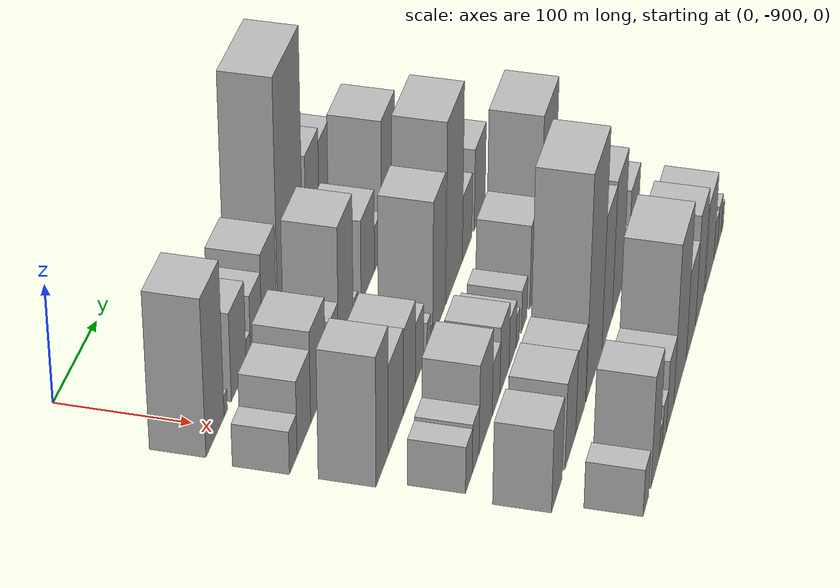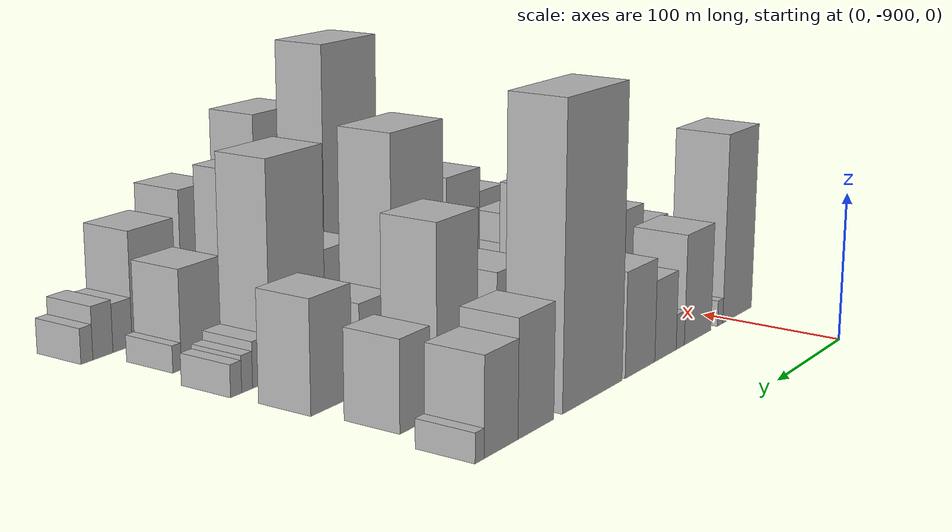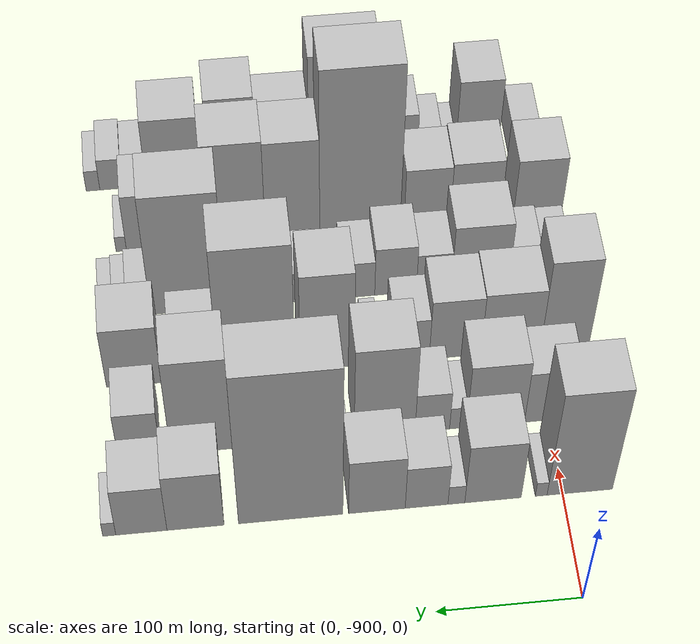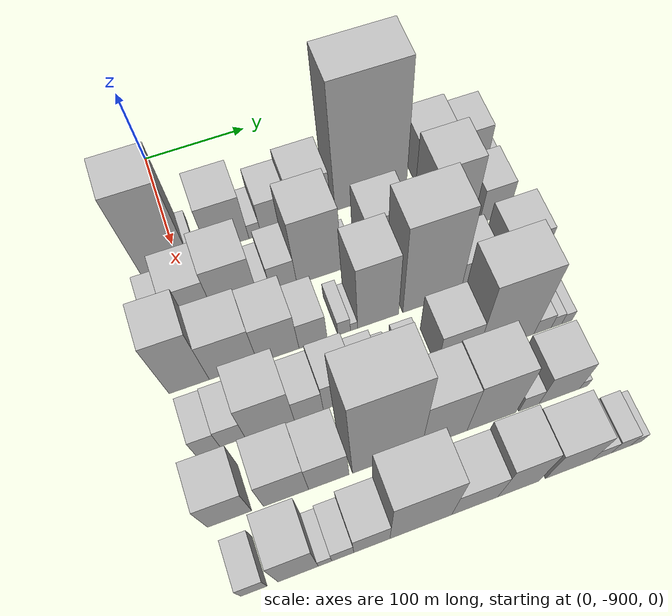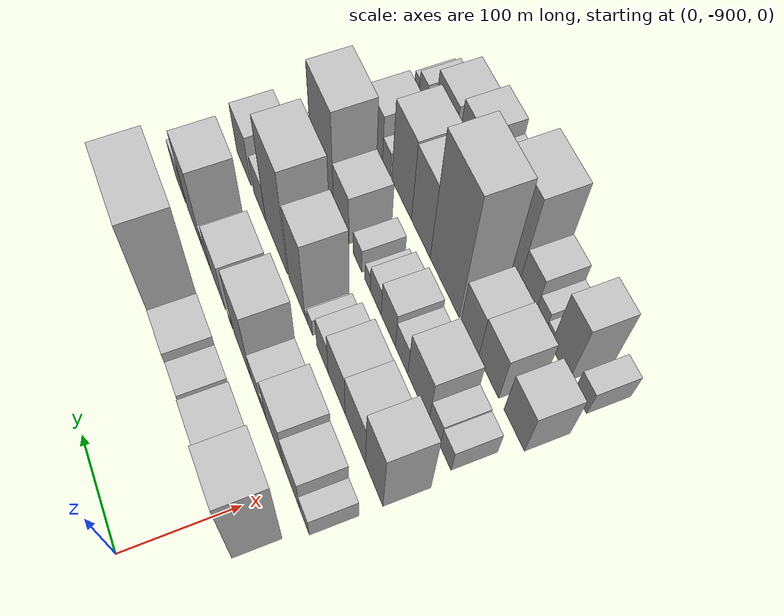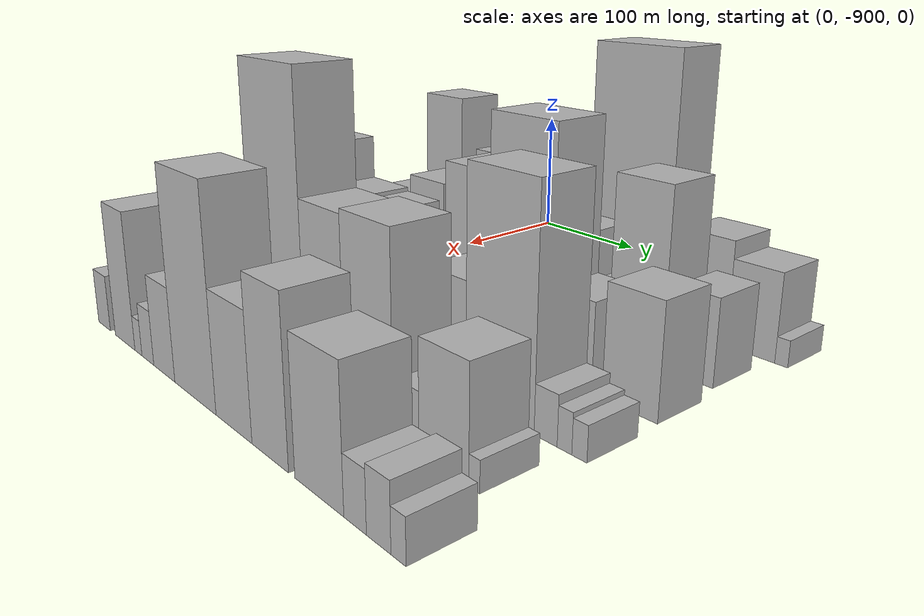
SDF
<sdf version="1.6">
 <world name="default">
  <model name="building_1">
   <static>1</static>
   <pose>100.0000 -911.9034 0 0.000000 0.000000 0.000000</pose>
   <link name="link">
    <pose>0 0 66.00 0 0 0</pose>
    <collision name="collision"><geometry><box><size>40.0000 46.1933 132.0000</size></box></geometry></collision>
    <visual name="visual">
     <cast_shadows>0</cast_shadows>
     <geometry><box><size>40.0000 46.1933 132.0000</size></box></geometry>
     <material>
      <script>
       <uri>model://HANNAS_wall/materials/scripts</uri>
       <uri>model://HANNAS_wall/materials/textures</uri>
       <name>vrc/HANNAS_wall</name>
      </script>
     </material>
    </visual>
   </link>
  </model>
  <model name="building_2">
   <static>1</static>
   <pose>100.0000 -884.6747 0 0.000000 0.000000 0.000000</pose>
   <link name="link">
    <pose>0 0 9.00 0 0 0</pose>
    <collision name="collision"><geometry><box><size>40.0000 8.2640 18.0000</size></box></geometry></collision>
    <visual name="visual">
     <cast_shadows>0</cast_shadows>
     <geometry><box><size>40.0000 8.2640 18.0000</size></box></geometry>
     <material>
      <script>
       <uri>model://HANNAS_wall/materials/scripts</uri>
       <uri>model://HANNAS_wall/materials/textures</uri>
       <name>vrc/HANNAS_wall</name>
      </script>
     </material>
    </visual>
   </link>
  </model>
  <model name="building_3">
   <static>1</static>
   <pose>100.0000 -850.7324 0 0.000000 0.000000 0.000000</pose>
   <link name="link">
    <pose>0 0 37.50 0 0 0</pose>
    <collision name="collision"><geometry><box><size>40.0000 39.6207 75.0000</size></box></geometry></collision>
    <visual name="visual">
     <cast_shadows>0</cast_shadows>
     <geometry><box><size>40.0000 39.6207 75.0000</size></box></geometry>
     <material>
      <script>
       <uri>model://HANNAS_wall/materials/scripts</uri>
       <uri>model://HANNAS_wall/materials/textures</uri>
       <name>vrc/HANNAS_wall</name>
      </script>
     </material>
    </visual>
   </link>
  </model>
  <model name="building_4">
   <static>1</static>
   <pose>100.0000 -825.0080 0 0.000000 0.000000 0.000000</pose>
   <link name="link">
    <pose>0 0 12.00 0 0 0</pose>
    <collision name="collision"><geometry><box><size>40.0000 11.8280 24.0000</size></box></geometry></collision>
    <visual name="visual">
     <cast_shadows>0</cast_shadows>
     <geometry><box><size>40.0000 11.8280 24.0000</size></box></geometry>
     <material>
      <script>
       <uri>model://HANNAS_wall/materials/scripts</uri>
       <uri>model://HANNAS_wall/materials/textures</uri>
       <name>vrc/HANNAS_wall</name>
      </script>
     </material>
    </visual>
   </link>
  </model>
  <model name="building_5">
   <static>1</static>
   <pose>100.0000 -804.1436 0 0.000000 0.000000 0.000000</pose>
   <link name="link">
    <pose>0 0 27.00 0 0 0</pose>
    <collision name="collision"><geometry><box><size>40.0000 29.9008 54.0000</size></box></geometry></collision>
    <visual name="visual">
     <cast_shadows>0</cast_shadows>
     <geometry><box><size>40.0000 29.9008 54.0000</size></box></geometry>
     <material>
      <script>
       <uri>model://HANNAS_wall/materials/scripts</uri>
       <uri>model://HANNAS_wall/materials/textures</uri>
       <name>vrc/HANNAS_wall</name>
      </script>
     </material>
    </visual>
   </link>
  </model>
  <model name="building_6">
   <static>1</static>
   <pose>100.0000 -769.4569 0 0.000000 0.000000 0.000000</pose>
   <link name="link">
    <pose>0 0 34.50 0 0 0</pose>
    <collision name="collision"><geometry><box><size>40.0000 39.4728 69.0000</size></box></geometry></collision>
    <visual name="visual">
     <cast_shadows>0</cast_shadows>
     <geometry><box><size>40.0000 39.4728 69.0000</size></box></geometry>
     <material>
      <script>
       <uri>model://HANNAS_wall/materials/scripts</uri>
       <uri>model://HANNAS_wall/materials/textures</uri>
       <name>vrc/HANNAS_wall</name>
      </script>
     </material>
    </visual>
   </link>
  </model>
  <model name="building_7">
   <static>1</static>
   <pose>100.0000 -709.4943 0 0.000000 0.000000 0.000000</pose>
   <link name="link">
    <pose>0 0 94.50 0 0 0</pose>
    <collision name="collision"><geometry><box><size>40.0000 72.4522 189.0000</size></box></geometry></collision>
    <visual name="visual">
     <cast_shadows>0</cast_shadows>
     <geometry><box><size>40.0000 72.4522 189.0000</size></box></geometry>
     <material>
      <script>
       <uri>model://HANNAS_wall/materials/scripts</uri>
       <uri>model://HANNAS_wall/materials/textures</uri>
       <name>vrc/HANNAS_wall</name>
      </script>
     </material>
    </visual>
   </link>
  </model>
  <model name="building_8">
   <static>1</static>
   <pose>100.0000 -643.5530 0 0.000000 0.000000 0.000000</pose>
   <link name="link">
    <pose>0 0 36.00 0 0 0</pose>
    <collision name="collision"><geometry><box><size>40.0000 39.4304 72.0000</size></box></geometry></collision>
    <visual name="visual">
     <cast_shadows>0</cast_shadows>
     <geometry><box><size>40.0000 39.4304 72.0000</size></box></geometry>
     <material>
      <script>
       <uri>model://HANNAS_wall/materials/scripts</uri>
       <uri>model://HANNAS_wall/materials/textures</uri>
       <name>vrc/HANNAS_wall</name>
      </script>
     </material>
    </visual>
   </link>
  </model>
  <model name="building_9">
   <static>1</static>
   <pose>100.0000 -606.2515 0 0.000000 0.000000 0.000000</pose>
   <link name="link">
    <pose>0 0 30.00 0 0 0</pose>
    <collision name="collision"><geometry><box><size>40.0000 35.1727 60.0000</size></box></geometry></collision>
    <visual name="visual">
     <cast_shadows>0</cast_shadows>
     <geometry><box><size>40.0000 35.1727 60.0000</size></box></geometry>
     <material>
      <script>
       <uri>model://HANNAS_wall/materials/scripts</uri>
       <uri>model://HANNAS_wall/materials/textures</uri>
       <name>vrc/HANNAS_wall</name>
      </script>
     </material>
    </visual>
   </link>
  </model>
  <model name="building_10">
   <static>1</static>
   <pose>100.0000 -584.1855 0 0.000000 0.000000 0.000000</pose>
   <link name="link">
    <pose>0 0 9.00 0 0 0</pose>
    <collision name="collision"><geometry><box><size>40.0000 8.9594 18.0000</size></box></geometry></collision>
    <visual name="visual">
     <cast_shadows>0</cast_shadows>
     <geometry><box><size>40.0000 8.9594 18.0000</size></box></geometry>
     <material>
      <script>
       <uri>model://HANNAS_wall/materials/scripts</uri>
       <uri>model://HANNAS_wall/materials/textures</uri>
       <name>vrc/HANNAS_wall</name>
      </script>
     </material>
    </visual>
   </link>
  </model>
  <model name="building_55">
   <static>1</static>
   <pose>160.0000 -929.8320 0 0.000000 0.000000 0.000000</pose>
   <link name="link">
    <pose>0 0 18.00 0 0 0</pose>
    <collision name="collision"><geometry><box><size>40.0000 20.3360 36.0000</size></box></geometry></collision>
    <visual name="visual">
     <cast_shadows>0</cast_shadows>
     <geometry><box><size>40.0000 20.3360 36.0000</size></box></geometry>
     <material>
      <script>
       <uri>model://HANNAS_wall/materials/scripts</uri>
       <uri>model://HANNAS_wall/materials/textures</uri>
       <name>vrc/HANNAS_wall</name>
      </script>
     </material>
    </visual>
   </link>
  </model>
  <model name="building_56">
   <static>1</static>
   <pose>160.0000 -901.0765 0 0.000000 0.000000 0.000000</pose>
   <link name="link">
    <pose>0 0 31.50 0 0 0</pose>
    <collision name="collision"><geometry><box><size>40.0000 37.1749 63.0000</size></box></geometry></collision>
    <visual name="visual">
     <cast_shadows>0</cast_shadows>
     <geometry><box><size>40.0000 37.1749 63.0000</size></box></geometry>
     <material>
      <script>
       <uri>model://HANNAS_wall/materials/scripts</uri>
       <uri>model://HANNAS_wall/materials/textures</uri>
       <name>vrc/HANNAS_wall</name>
      </script>
     </material>
    </visual>
   </link>
  </model>
  <model name="building_57">
   <static>1</static>
   <pose>160.0000 -861.5806 0 0.000000 0.000000 0.000000</pose>
   <link name="link">
    <pose>0 0 39.00 0 0 0</pose>
    <collision name="collision"><geometry><box><size>40.0000 41.8168 78.0000</size></box></geometry></collision>
    <visual name="visual">
     <cast_shadows>0</cast_shadows>
     <geometry><box><size>40.0000 41.8168 78.0000</size></box></geometry>
     <material>
      <script>
       <uri>model://HANNAS_wall/materials/scripts</uri>
       <uri>model://HANNAS_wall/materials/textures</uri>
       <name>vrc/HANNAS_wall</name>
      </script>
     </material>
    </visual>
   </link>
  </model>
  <model name="building_58">
   <static>1</static>
   <pose>160.0000 -834.5997 0 0.000000 0.000000 0.000000</pose>
   <link name="link">
    <pose>0 0 13.50 0 0 0</pose>
    <collision name="collision"><geometry><box><size>40.0000 12.1451 27.0000</size></box></geometry></collision>
    <visual name="visual">
     <cast_shadows>0</cast_shadows>
     <geometry><box><size>40.0000 12.1451 27.0000</size></box></geometry>
     <material>
      <script>
       <uri>model://HANNAS_wall/materials/scripts</uri>
       <uri>model://HANNAS_wall/materials/textures</uri>
       <name>vrc/HANNAS_wall</name>
      </script>
     </material>
    </visual>
   </link>
  </model>
  <model name="building_59">
   <static>1</static>
   <pose>160.0000 -816.1241 0 0.000000 0.000000 0.000000</pose>
   <link name="link">
    <pose>0 0 24.00 0 0 0</pose>
    <collision name="collision"><geometry><box><size>40.0000 24.8060 48.0000</size></box></geometry></collision>
    <visual name="visual">
     <cast_shadows>0</cast_shadows>
     <geometry><box><size>40.0000 24.8060 48.0000</size></box></geometry>
     <material>
      <script>
       <uri>model://HANNAS_wall/materials/scripts</uri>
       <uri>model://HANNAS_wall/materials/textures</uri>
       <name>vrc/HANNAS_wall</name>
      </script>
     </material>
    </visual>
   </link>
  </model>
  <model name="building_60">
   <static>1</static>
   <pose>160.0000 -781.9410 0 0.000000 0.000000 0.000000</pose>
   <link name="link">
    <pose>0 0 55.50 0 0 0</pose>
    <collision name="collision"><geometry><box><size>40.0000 43.5602 111.0000</size></box></geometry></collision>
    <visual name="visual">
     <cast_shadows>0</cast_shadows>
     <geometry><box><size>40.0000 43.5602 111.0000</size></box></geometry>
     <material>
      <script>
       <uri>model://HANNAS_wall/materials/scripts</uri>
       <uri>model://HANNAS_wall/materials/textures</uri>
       <name>vrc/HANNAS_wall</name>
      </script>
     </material>
    </visual>
   </link>
  </model>
  <model name="building_61">
   <static>1</static>
   <pose>160.0000 -750.7499 0 0.000000 0.000000 0.000000</pose>
   <link name="link">
    <pose>0 0 9.00 0 0 0</pose>
    <collision name="collision"><geometry><box><size>40.0000 8.8219 18.0000</size></box></geometry></collision>
    <visual name="visual">
     <cast_shadows>0</cast_shadows>
     <geometry><box><size>40.0000 8.8219 18.0000</size></box></geometry>
     <material>
      <script>
       <uri>model://HANNAS_wall/materials/scripts</uri>
       <uri>model://HANNAS_wall/materials/textures</uri>
       <name>vrc/HANNAS_wall</name>
      </script>
     </material>
    </visual>
   </link>
  </model>
  <model name="building_62">
   <static>1</static>
   <pose>160.0000 -715.4975 0 0.000000 0.000000 0.000000</pose>
   <link name="link">
    <pose>0 0 36.00 0 0 0</pose>
    <collision name="collision"><geometry><box><size>40.0000 41.6830 72.0000</size></box></geometry></collision>
    <visual name="visual">
     <cast_shadows>0</cast_shadows>
     <geometry><box><size>40.0000 41.6830 72.0000</size></box></geometry>
     <material>
      <script>
       <uri>model://HANNAS_wall/materials/scripts</uri>
       <uri>model://HANNAS_wall/materials/textures</uri>
       <name>vrc/HANNAS_wall</name>
      </script>
     </material>
    </visual>
   </link>
  </model>
  <model name="building_63">
   <static>1</static>
   <pose>160.0000 -683.9865 0 0.000000 0.000000 0.000000</pose>
   <link name="link">
    <pose>0 0 19.50 0 0 0</pose>
    <collision name="collision"><geometry><box><size>40.0000 21.3389 39.0000</size></box></geometry></collision>
    <visual name="visual">
     <cast_shadows>0</cast_shadows>
     <geometry><box><size>40.0000 21.3389 39.0000</size></box></geometry>
     <material>
      <script>
       <uri>model://HANNAS_wall/materials/scripts</uri>
       <uri>model://HANNAS_wall/materials/textures</uri>
       <name>vrc/HANNAS_wall</name>
      </script>
     </material>
    </visual>
   </link>
  </model>
  <model name="building_64">
   <static>1</static>
   <pose>160.0000 -651.5729 0 0.000000 0.000000 0.000000</pose>
   <link name="link">
    <pose>0 0 58.50 0 0 0</pose>
    <collision name="collision"><geometry><box><size>40.0000 43.4884 117.0000</size></box></geometry></collision>
    <visual name="visual">
     <cast_shadows>0</cast_shadows>
     <geometry><box><size>40.0000 43.4884 117.0000</size></box></geometry>
     <material>
      <script>
       <uri>model://HANNAS_wall/materials/scripts</uri>
       <uri>model://HANNAS_wall/materials/textures</uri>
       <name>vrc/HANNAS_wall</name>
      </script>
     </material>
    </visual>
   </link>
  </model>
  <model name="building_65">
   <static>1</static>
   <pose>160.0000 -607.8178 0 0.000000 0.000000 0.000000</pose>
   <link name="link">
    <pose>0 0 28.50 0 0 0</pose>
    <collision name="collision"><geometry><box><size>40.0000 30.0216 57.0000</size></box></geometry></collision>
    <visual name="visual">
     <cast_shadows>0</cast_shadows>
     <geometry><box><size>40.0000 30.0216 57.0000</size></box></geometry>
     <material>
      <script>
       <uri>model://HANNAS_wall/materials/scripts</uri>
       <uri>model://HANNAS_wall/materials/textures</uri>
       <name>vrc/HANNAS_wall</name>
      </script>
     </material>
    </visual>
   </link>
  </model>
  <model name="building_112">
   <static>1</static>
   <pose>220.0000 -921.9320 0 0.000000 0.000000 0.000000</pose>
   <link name="link">
    <pose>0 0 54.00 0 0 0</pose>
    <collision name="collision"><geometry><box><size>40.0000 36.1359 108.0000</size></box></geometry></collision>
    <visual name="visual">
     <cast_shadows>0</cast_shadows>
     <geometry><box><size>40.0000 36.1359 108.0000</size></box></geometry>
     <material>
      <script>
       <uri>model://HANNAS_wall/materials/scripts</uri>
       <uri>model://HANNAS_wall/materials/textures</uri>
       <name>vrc/HANNAS_wall</name>
      </script>
     </material>
    </visual>
   </link>
  </model>
  <model name="building_113">
   <static>1</static>
   <pose>220.0000 -881.8180 0 0.000000 0.000000 0.000000</pose>
   <link name="link">
    <pose>0 0 37.50 0 0 0</pose>
    <collision name="collision"><geometry><box><size>40.0000 44.0921 75.0000</size></box></geometry></collision>
    <visual name="visual">
     <cast_shadows>0</cast_shadows>
     <geometry><box><size>40.0000 44.0921 75.0000</size></box></geometry>
     <material>
      <script>
       <uri>model://HANNAS_wall/materials/scripts</uri>
       <uri>model://HANNAS_wall/materials/textures</uri>
       <name>vrc/HANNAS_wall</name>
      </script>
     </material>
    </visual>
   </link>
  </model>
  <model name="building_114">
   <static>1</static>
   <pose>220.0000 -840.7847 0 0.000000 0.000000 0.000000</pose>
   <link name="link">
    <pose>0 0 36.00 0 0 0</pose>
    <collision name="collision"><geometry><box><size>40.0000 37.9745 72.0000</size></box></geometry></collision>
    <visual name="visual">
     <cast_shadows>0</cast_shadows>
     <geometry><box><size>40.0000 37.9745 72.0000</size></box></geometry>
     <material>
      <script>
       <uri>model://HANNAS_wall/materials/scripts</uri>
       <uri>model://HANNAS_wall/materials/textures</uri>
       <name>vrc/HANNAS_wall</name>
      </script>
     </material>
    </visual>
   </link>
  </model>
  <model name="building_115">
   <static>1</static>
   <pose>220.0000 -808.6441 0 0.000000 0.000000 0.000000</pose>
   <link name="link">
    <pose>0 0 25.50 0 0 0</pose>
    <collision name="collision"><geometry><box><size>40.0000 26.3066 51.0000</size></box></geometry></collision>
    <visual name="visual">
     <cast_shadows>0</cast_shadows>
     <geometry><box><size>40.0000 26.3066 51.0000</size></box></geometry>
     <material>
      <script>
       <uri>model://HANNAS_wall/materials/scripts</uri>
       <uri>model://HANNAS_wall/materials/textures</uri>
       <name>vrc/HANNAS_wall</name>
      </script>
     </material>
    </visual>
   </link>
  </model>
  <model name="building_116">
   <static>1</static>
   <pose>220.0000 -779.5999 0 0.000000 0.000000 0.000000</pose>
   <link name="link">
    <pose>0 0 13.50 0 0 0</pose>
    <collision name="collision"><geometry><box><size>40.0000 11.7818 27.0000</size></box></geometry></collision>
    <visual name="visual">
     <cast_shadows>0</cast_shadows>
     <geometry><box><size>40.0000 11.7818 27.0000</size></box></geometry>
     <material>
      <script>
       <uri>model://HANNAS_wall/materials/scripts</uri>
       <uri>model://HANNAS_wall/materials/textures</uri>
       <name>vrc/HANNAS_wall</name>
      </script>
     </material>
    </visual>
   </link>
  </model>
  <model name="building_117">
   <static>1</static>
   <pose>220.0000 -770.2798 0 0.000000 0.000000 0.000000</pose>
   <link name="link">
    <pose>0 0 7.50 0 0 0</pose>
    <collision name="collision"><geometry><box><size>40.0000 6.8584 15.0000</size></box></geometry></collision>
    <visual name="visual">
     <cast_shadows>0</cast_shadows>
     <geometry><box><size>40.0000 6.8584 15.0000</size></box></geometry>
     <material>
      <script>
       <uri>model://HANNAS_wall/materials/scripts</uri>
       <uri>model://HANNAS_wall/materials/textures</uri>
       <name>vrc/HANNAS_wall</name>
      </script>
     </material>
    </visual>
   </link>
  </model>
  <model name="building_118">
   <static>1</static>
   <pose>220.0000 -747.2744 0 0.000000 0.000000 0.000000</pose>
   <link name="link">
    <pose>0 0 58.50 0 0 0</pose>
    <collision name="collision"><geometry><box><size>40.0000 39.1526 117.0000</size></box></geometry></collision>
    <visual name="visual">
     <cast_shadows>0</cast_shadows>
     <geometry><box><size>40.0000 39.1526 117.0000</size></box></geometry>
     <material>
      <script>
       <uri>model://HANNAS_wall/materials/scripts</uri>
       <uri>model://HANNAS_wall/materials/textures</uri>
       <name>vrc/HANNAS_wall</name>
      </script>
     </material>
    </visual>
   </link>
  </model>
  <model name="building_119">
   <static>1</static>
   <pose>220.0000 -695.6660 0 0.000000 0.000000 0.000000</pose>
   <link name="link">
    <pose>0 0 78.00 0 0 0</pose>
    <collision name="collision"><geometry><box><size>40.0000 56.0641 156.0000</size></box></geometry></collision>
    <visual name="visual">
     <cast_shadows>0</cast_shadows>
     <geometry><box><size>40.0000 56.0641 156.0000</size></box></geometry>
     <material>
      <script>
       <uri>model://HANNAS_wall/materials/scripts</uri>
       <uri>model://HANNAS_wall/materials/textures</uri>
       <name>vrc/HANNAS_wall</name>
      </script>
     </material>
    </visual>
   </link>
  </model>
  <model name="building_120">
   <static>1</static>
   <pose>220.0000 -651.1069 0 0.000000 0.000000 0.000000</pose>
   <link name="link">
    <pose>0 0 28.50 0 0 0</pose>
    <collision name="collision"><geometry><box><size>40.0000 33.0542 57.0000</size></box></geometry></collision>
    <visual name="visual">
     <cast_shadows>0</cast_shadows>
     <geometry><box><size>40.0000 33.0542 57.0000</size></box></geometry>
     <material>
      <script>
       <uri>model://HANNAS_wall/materials/scripts</uri>
       <uri>model://HANNAS_wall/materials/textures</uri>
       <name>vrc/HANNAS_wall</name>
      </script>
     </material>
    </visual>
   </link>
  </model>
  <model name="building_121">
   <static>1</static>
   <pose>220.0000 -606.7290 0 0.000000 0.000000 0.000000</pose>
   <link name="link">
    <pose>0 0 36.00 0 0 0</pose>
    <collision name="collision"><geometry><box><size>40.0000 39.7016 72.0000</size></box></geometry></collision>
    <visual name="visual">
     <cast_shadows>0</cast_shadows>
     <geometry><box><size>40.0000 39.7016 72.0000</size></box></geometry>
     <material>
      <script>
       <uri>model://HANNAS_wall/materials/scripts</uri>
       <uri>model://HANNAS_wall/materials/textures</uri>
       <name>vrc/HANNAS_wall</name>
      </script>
     </material>
    </visual>
   </link>
  </model>
  <model name="building_164">
   <static>1</static>
   <pose>280.0000 -922.5126 0 0.000000 0.000000 0.000000</pose>
   <link name="link">
    <pose>0 0 19.50 0 0 0</pose>
    <collision name="collision"><geometry><box><size>40.0000 20.9748 39.0000</size></box></geometry></collision>
    <visual name="visual">
     <cast_shadows>0</cast_shadows>
     <geometry><box><size>40.0000 20.9748 39.0000</size></box></geometry>
     <material>
      <script>
       <uri>model://HANNAS_wall/materials/scripts</uri>
       <uri>model://HANNAS_wall/materials/textures</uri>
       <name>vrc/HANNAS_wall</name>
      </script>
     </material>
    </visual>
   </link>
  </model>
  <model name="building_165">
   <static>1</static>
   <pose>280.0000 -900.9185 0 0.000000 0.000000 0.000000</pose>
   <link name="link">
    <pose>0 0 21.00 0 0 0</pose>
    <collision name="collision"><geometry><box><size>40.0000 22.2135 42.0000</size></box></geometry></collision>
    <visual name="visual">
     <cast_shadows>0</cast_shadows>
     <geometry><box><size>40.0000 22.2135 42.0000</size></box></geometry>
     <material>
      <script>
       <uri>model://HANNAS_wall/materials/scripts</uri>
       <uri>model://HANNAS_wall/materials/textures</uri>
       <name>vrc/HANNAS_wall</name>
      </script>
     </material>
    </visual>
   </link>
  </model>
  <model name="building_166">
   <static>1</static>
   <pose>280.0000 -868.0560 0 0.000000 0.000000 0.000000</pose>
   <link name="link">
    <pose>0 0 37.50 0 0 0</pose>
    <collision name="collision"><geometry><box><size>40.0000 43.5115 75.0000</size></box></geometry></collision>
    <visual name="visual">
     <cast_shadows>0</cast_shadows>
     <geometry><box><size>40.0000 43.5115 75.0000</size></box></geometry>
     <material>
      <script>
       <uri>model://HANNAS_wall/materials/scripts</uri>
       <uri>model://HANNAS_wall/materials/textures</uri>
       <name>vrc/HANNAS_wall</name>
      </script>
     </material>
    </visual>
   </link>
  </model>
  <model name="building_167">
   <static>1</static>
   <pose>280.0000 -833.1964 0 0.000000 0.000000 0.000000</pose>
   <link name="link">
    <pose>0 0 22.50 0 0 0</pose>
    <collision name="collision"><geometry><box><size>40.0000 26.2076 45.0000</size></box></geometry></collision>
    <visual name="visual">
     <cast_shadows>0</cast_shadows>
     <geometry><box><size>40.0000 26.2076 45.0000</size></box></geometry>
     <material>
      <script>
       <uri>model://HANNAS_wall/materials/scripts</uri>
       <uri>model://HANNAS_wall/materials/textures</uri>
       <name>vrc/HANNAS_wall</name>
      </script>
     </material>
    </visual>
   </link>
  </model>
  <model name="building_168">
   <static>1</static>
   <pose>280.0000 -804.4616 0 0.000000 0.000000 0.000000</pose>
   <link name="link">
    <pose>0 0 28.50 0 0 0</pose>
    <collision name="collision"><geometry><box><size>40.0000 31.2620 57.0000</size></box></geometry></collision>
    <visual name="visual">
     <cast_shadows>0</cast_shadows>
     <geometry><box><size>40.0000 31.2620 57.0000</size></box></geometry>
     <material>
      <script>
       <uri>model://HANNAS_wall/materials/scripts</uri>
       <uri>model://HANNAS_wall/materials/textures</uri>
       <name>vrc/HANNAS_wall</name>
      </script>
     </material>
    </visual>
   </link>
  </model>
  <model name="building_169">
   <static>1</static>
   <pose>280.0000 -776.5915 0 0.000000 0.000000 0.000000</pose>
   <link name="link">
    <pose>0 0 21.00 0 0 0</pose>
    <collision name="collision"><geometry><box><size>40.0000 24.4782 42.0000</size></box></geometry></collision>
    <visual name="visual">
     <cast_shadows>0</cast_shadows>
     <geometry><box><size>40.0000 24.4782 42.0000</size></box></geometry>
     <material>
      <script>
       <uri>model://HANNAS_wall/materials/scripts</uri>
       <uri>model://HANNAS_wall/materials/textures</uri>
       <name>vrc/HANNAS_wall</name>
      </script>
     </material>
    </visual>
   </link>
  </model>
  <model name="building_170">
   <static>1</static>
   <pose>280.0000 -758.2121 0 0.000000 0.000000 0.000000</pose>
   <link name="link">
    <pose>0 0 13.50 0 0 0</pose>
    <collision name="collision"><geometry><box><size>40.0000 12.2807 27.0000</size></box></geometry></collision>
    <visual name="visual">
     <cast_shadows>0</cast_shadows>
     <geometry><box><size>40.0000 12.2807 27.0000</size></box></geometry>
     <material>
      <script>
       <uri>model://HANNAS_wall/materials/scripts</uri>
       <uri>model://HANNAS_wall/materials/textures</uri>
       <name>vrc/HANNAS_wall</name>
      </script>
     </material>
    </visual>
   </link>
  </model>
  <model name="building_171">
   <static>1</static>
   <pose>280.0000 -734.9624 0 0.000000 0.000000 0.000000</pose>
   <link name="link">
    <pose>0 0 18.00 0 0 0</pose>
    <collision name="collision"><geometry><box><size>40.0000 20.2188 36.0000</size></box></geometry></collision>
    <visual name="visual">
     <cast_shadows>0</cast_shadows>
     <geometry><box><size>40.0000 20.2188 36.0000</size></box></geometry>
     <material>
      <script>
       <uri>model://HANNAS_wall/materials/scripts</uri>
       <uri>model://HANNAS_wall/materials/textures</uri>
       <name>vrc/HANNAS_wall</name>
      </script>
     </material>
    </visual>
   </link>
  </model>
  <model name="building_172">
   <static>1</static>
   <pose>280.0000 -696.1133 0 0.000000 0.000000 0.000000</pose>
   <link name="link">
    <pose>0 0 36.00 0 0 0</pose>
    <collision name="collision"><geometry><box><size>40.0000 37.4794 72.0000</size></box></geometry></collision>
    <visual name="visual">
     <cast_shadows>0</cast_shadows>
     <geometry><box><size>40.0000 37.4794 72.0000</size></box></geometry>
     <material>
      <script>
       <uri>model://HANNAS_wall/materials/scripts</uri>
       <uri>model://HANNAS_wall/materials/textures</uri>
       <name>vrc/HANNAS_wall</name>
      </script>
     </material>
    </visual>
   </link>
  </model>
  <model name="building_173">
   <static>1</static>
   <pose>280.0000 -649.6661 0 0.000000 0.000000 0.000000</pose>
   <link name="link">
    <pose>0 0 70.50 0 0 0</pose>
    <collision name="collision"><geometry><box><size>40.0000 55.4148 141.0000</size></box></geometry></collision>
    <visual name="visual">
     <cast_shadows>0</cast_shadows>
     <geometry><box><size>40.0000 55.4148 141.0000</size></box></geometry>
     <material>
      <script>
       <uri>model://HANNAS_wall/materials/scripts</uri>
       <uri>model://HANNAS_wall/materials/textures</uri>
       <name>vrc/HANNAS_wall</name>
      </script>
     </material>
    </visual>
   </link>
  </model>
  <model name="building_174">
   <static>1</static>
   <pose>280.0000 -613.5714 0 0.000000 0.000000 0.000000</pose>
   <link name="link">
    <pose>0 0 15.00 0 0 0</pose>
    <collision name="collision"><geometry><box><size>40.0000 16.7746 30.0000</size></box></geometry></collision>
    <visual name="visual">
     <cast_shadows>0</cast_shadows>
     <geometry><box><size>40.0000 16.7746 30.0000</size></box></geometry>
     <material>
      <script>
       <uri>model://HANNAS_wall/materials/scripts</uri>
       <uri>model://HANNAS_wall/materials/textures</uri>
       <name>vrc/HANNAS_wall</name>
      </script>
     </material>
    </visual>
   </link>
  </model>
  <model name="building_175">
   <static>1</static>
   <pose>280.0000 -600.0495 0 0.000000 0.000000 0.000000</pose>
   <link name="link">
    <pose>0 0 12.00 0 0 0</pose>
    <collision name="collision"><geometry><box><size>40.0000 10.2691 24.0000</size></box></geometry></collision>
    <visual name="visual">
     <cast_shadows>0</cast_shadows>
     <geometry><box><size>40.0000 10.2691 24.0000</size></box></geometry>
     <material>
      <script>
       <uri>model://HANNAS_wall/materials/scripts</uri>
       <uri>model://HANNAS_wall/materials/textures</uri>
       <name>vrc/HANNAS_wall</name>
      </script>
     </material>
    </visual>
   </link>
  </model>
  <model name="building_176">
   <static>1</static>
   <pose>280.0000 -589.7692 0 0.000000 0.000000 0.000000</pose>
   <link name="link">
    <pose>0 0 10.50 0 0 0</pose>
    <collision name="collision"><geometry><box><size>40.0000 10.2914 21.0000</size></box></geometry></collision>
    <visual name="visual">
     <cast_shadows>0</cast_shadows>
     <geometry><box><size>40.0000 10.2914 21.0000</size></box></geometry>
     <material>
      <script>
       <uri>model://HANNAS_wall/materials/scripts</uri>
       <uri>model://HANNAS_wall/materials/textures</uri>
       <name>vrc/HANNAS_wall</name>
      </script>
     </material>
    </visual>
   </link>
  </model>
  <model name="building_221">
   <static>1</static>
   <pose>340.0000 -921.2879 0 0.000000 0.000000 0.000000</pose>
   <link name="link">
    <pose>0 0 34.50 0 0 0</pose>
    <collision name="collision"><geometry><box><size>40.0000 37.4241 69.0000</size></box></geometry></collision>
    <visual name="visual">
     <cast_shadows>0</cast_shadows>
     <geometry><box><size>40.0000 37.4241 69.0000</size></box></geometry>
     <material>
      <script>
       <uri>model://HANNAS_wall/materials/scripts</uri>
       <uri>model://HANNAS_wall/materials/textures</uri>
       <name>vrc/HANNAS_wall</name>
      </script>
     </material>
    </visual>
   </link>
  </model>
  <model name="building_222">
   <static>1</static>
   <pose>340.0000 -873.0959 0 0.000000 0.000000 0.000000</pose>
   <link name="link">
    <pose>0 0 36.00 0 0 0</pose>
    <collision name="collision"><geometry><box><size>40.0000 38.9600 72.0000</size></box></geometry></collision>
    <visual name="visual">
     <cast_shadows>0</cast_shadows>
     <geometry><box><size>40.0000 38.9600 72.0000</size></box></geometry>
     <material>
      <script>
       <uri>model://HANNAS_wall/materials/scripts</uri>
       <uri>model://HANNAS_wall/materials/textures</uri>
       <name>vrc/HANNAS_wall</name>
      </script>
     </material>
    </visual>
   </link>
  </model>
  <model name="building_223">
   <static>1</static>
   <pose>340.0000 -835.9283 0 0.000000 0.000000 0.000000</pose>
   <link name="link">
    <pose>0 0 34.50 0 0 0</pose>
    <collision name="collision"><geometry><box><size>40.0000 35.3753 69.0000</size></box></geometry></collision>
    <visual name="visual">
     <cast_shadows>0</cast_shadows>
     <geometry><box><size>40.0000 35.3753 69.0000</size></box></geometry>
     <material>
      <script>
       <uri>model://HANNAS_wall/materials/scripts</uri>
       <uri>model://HANNAS_wall/materials/textures</uri>
       <name>vrc/HANNAS_wall</name>
      </script>
     </material>
    </visual>
   </link>
  </model>
  <model name="building_224">
   <static>1</static>
   <pose>340.0000 -784.5029 0 0.000000 0.000000 0.000000</pose>
   <link name="link">
    <pose>0 0 94.50 0 0 0</pose>
    <collision name="collision"><geometry><box><size>40.0000 61.4755 189.0000</size></box></geometry></collision>
    <visual name="visual">
     <cast_shadows>0</cast_shadows>
     <geometry><box><size>40.0000 61.4755 189.0000</size></box></geometry>
     <material>
      <script>
       <uri>model://HANNAS_wall/materials/scripts</uri>
       <uri>model://HANNAS_wall/materials/textures</uri>
       <name>vrc/HANNAS_wall</name>
      </script>
     </material>
    </visual>
   </link>
  </model>
  <model name="building_225">
   <static>1</static>
   <pose>340.0000 -732.9835 0 0.000000 0.000000 0.000000</pose>
   <link name="link">
    <pose>0 0 57.00 0 0 0</pose>
    <collision name="collision"><geometry><box><size>40.0000 41.5632 114.0000</size></box></geometry></collision>
    <visual name="visual">
     <cast_shadows>0</cast_shadows>
     <geometry><box><size>40.0000 41.5632 114.0000</size></box></geometry>
     <material>
      <script>
       <uri>model://HANNAS_wall/materials/scripts</uri>
       <uri>model://HANNAS_wall/materials/textures</uri>
       <name>vrc/HANNAS_wall</name>
      </script>
     </material>
    </visual>
   </link>
  </model>
  <model name="building_226">
   <static>1</static>
   <pose>340.0000 -689.6282 0 0.000000 0.000000 0.000000</pose>
   <link name="link">
    <pose>0 0 58.50 0 0 0</pose>
    <collision name="collision"><geometry><box><size>40.0000 45.1474 117.0000</size></box></geometry></collision>
    <visual name="visual">
     <cast_shadows>0</cast_shadows>
     <geometry><box><size>40.0000 45.1474 117.0000</size></box></geometry>
     <material>
      <script>
       <uri>model://HANNAS_wall/materials/scripts</uri>
       <uri>model://HANNAS_wall/materials/textures</uri>
       <name>vrc/HANNAS_wall</name>
      </script>
     </material>
    </visual>
   </link>
  </model>
  <model name="building_227">
   <static>1</static>
   <pose>340.0000 -654.5815 0 0.000000 0.000000 0.000000</pose>
   <link name="link">
    <pose>0 0 18.00 0 0 0</pose>
    <collision name="collision"><geometry><box><size>40.0000 18.9459 36.0000</size></box></geometry></collision>
    <visual name="visual">
     <cast_shadows>0</cast_shadows>
     <geometry><box><size>40.0000 18.9459 36.0000</size></box></geometry>
     <material>
      <script>
       <uri>model://HANNAS_wall/materials/scripts</uri>
       <uri>model://HANNAS_wall/materials/textures</uri>
       <name>vrc/HANNAS_wall</name>
      </script>
     </material>
    </visual>
   </link>
  </model>
  <model name="building_228">
   <static>1</static>
   <pose>340.0000 -625.8190 0 0.000000 0.000000 0.000000</pose>
   <link name="link">
    <pose>0 0 33.00 0 0 0</pose>
    <collision name="collision"><geometry><box><size>40.0000 38.5791 66.0000</size></box></geometry></collision>
    <visual name="visual">
     <cast_shadows>0</cast_shadows>
     <geometry><box><size>40.0000 38.5791 66.0000</size></box></geometry>
     <material>
      <script>
       <uri>model://HANNAS_wall/materials/scripts</uri>
       <uri>model://HANNAS_wall/materials/textures</uri>
       <name>vrc/HANNAS_wall</name>
      </script>
     </material>
    </visual>
   </link>
  </model>
  <model name="building_229">
   <static>1</static>
   <pose>340.0000 -602.5983 0 0.000000 0.000000 0.000000</pose>
   <link name="link">
    <pose>0 0 9.00 0 0 0</pose>
    <collision name="collision"><geometry><box><size>40.0000 7.8624 18.0000</size></box></geometry></collision>
    <visual name="visual">
     <cast_shadows>0</cast_shadows>
     <geometry><box><size>40.0000 7.8624 18.0000</size></box></geometry>
     <material>
      <script>
       <uri>model://HANNAS_wall/materials/scripts</uri>
       <uri>model://HANNAS_wall/materials/textures</uri>
       <name>vrc/HANNAS_wall</name>
      </script>
     </material>
    </visual>
   </link>
  </model>
  <model name="building_272">
   <static>1</static>
   <pose>400.0000 -919.2366 0 0.000000 0.000000 0.000000</pose>
   <link name="link">
    <pose>0 0 19.50 0 0 0</pose>
    <collision name="collision"><geometry><box><size>40.0000 21.5268 39.0000</size></box></geometry></collision>
    <visual name="visual">
     <cast_shadows>0</cast_shadows>
     <geometry><box><size>40.0000 21.5268 39.0000</size></box></geometry>
     <material>
      <script>
       <uri>model://HANNAS_wall/materials/scripts</uri>
       <uri>model://HANNAS_wall/materials/textures</uri>
       <name>vrc/HANNAS_wall</name>
      </script>
     </material>
    </visual>
   </link>
  </model>
  <model name="building_273">
   <static>1</static>
   <pose>400.0000 -882.6630 0 0.000000 0.000000 0.000000</pose>
   <link name="link">
    <pose>0 0 46.50 0 0 0</pose>
    <collision name="collision"><geometry><box><size>40.0000 33.6203 93.0000</size></box></geometry></collision>
    <visual name="visual">
     <cast_shadows>0</cast_shadows>
     <geometry><box><size>40.0000 33.6203 93.0000</size></box></geometry>
     <material>
      <script>
       <uri>model://HANNAS_wall/materials/scripts</uri>
       <uri>model://HANNAS_wall/materials/textures</uri>
       <name>vrc/HANNAS_wall</name>
      </script>
     </material>
    </visual>
   </link>
  </model>
  <model name="building_274">
   <static>1</static>
   <pose>400.0000 -860.1626 0 0.000000 0.000000 0.000000</pose>
   <link name="link">
    <pose>0 0 12.00 0 0 0</pose>
    <collision name="collision"><geometry><box><size>40.0000 11.3804 24.0000</size></box></geometry></collision>
    <visual name="visual">
     <cast_shadows>0</cast_shadows>
     <geometry><box><size>40.0000 11.3804 24.0000</size></box></geometry>
     <material>
      <script>
       <uri>model://HANNAS_wall/materials/scripts</uri>
       <uri>model://HANNAS_wall/materials/textures</uri>
       <name>vrc/HANNAS_wall</name>
      </script>
     </material>
    </visual>
   </link>
  </model>
  <model name="building_275">
   <static>1</static>
   <pose>400.0000 -845.2098 0 0.000000 0.000000 0.000000</pose>
   <link name="link">
    <pose>0 0 18.00 0 0 0</pose>
    <collision name="collision"><geometry><box><size>40.0000 18.5253 36.0000</size></box></geometry></collision>
    <visual name="visual">
     <cast_shadows>0</cast_shadows>
     <geometry><box><size>40.0000 18.5253 36.0000</size></box></geometry>
     <material>
      <script>
       <uri>model://HANNAS_wall/materials/scripts</uri>
       <uri>model://HANNAS_wall/materials/textures</uri>
       <name>vrc/HANNAS_wall</name>
      </script>
     </material>
    </visual>
   </link>
  </model>
  <model name="building_276">
   <static>1</static>
   <pose>400.0000 -820.5337 0 0.000000 0.000000 0.000000</pose>
   <link name="link">
    <pose>0 0 30.00 0 0 0</pose>
    <collision name="collision"><geometry><box><size>40.0000 30.8269 60.0000</size></box></geometry></collision>
    <visual name="visual">
     <cast_shadows>0</cast_shadows>
     <geometry><box><size>40.0000 30.8269 60.0000</size></box></geometry>
     <material>
      <script>
       <uri>model://HANNAS_wall/materials/scripts</uri>
       <uri>model://HANNAS_wall/materials/textures</uri>
       <name>vrc/HANNAS_wall</name>
      </script>
     </material>
    </visual>
   </link>
  </model>
  <model name="building_277">
   <static>1</static>
   <pose>400.0000 -778.1924 0 0.000000 0.000000 0.000000</pose>
   <link name="link">
    <pose>0 0 67.50 0 0 0</pose>
    <collision name="collision"><geometry><box><size>40.0000 53.8556 135.0000</size></box></geometry></collision>
    <visual name="visual">
     <cast_shadows>0</cast_shadows>
     <geometry><box><size>40.0000 53.8556 135.0000</size></box></geometry>
     <material>
      <script>
       <uri>model://HANNAS_wall/materials/scripts</uri>
       <uri>model://HANNAS_wall/materials/textures</uri>
       <name>vrc/HANNAS_wall</name>
      </script>
     </material>
    </visual>
   </link>
  </model>
  <model name="building_278">
   <static>1</static>
   <pose>400.0000 -730.7469 0 0.000000 0.000000 0.000000</pose>
   <link name="link">
    <pose>0 0 37.50 0 0 0</pose>
    <collision name="collision"><geometry><box><size>40.0000 41.0356 75.0000</size></box></geometry></collision>
    <visual name="visual">
     <cast_shadows>0</cast_shadows>
     <geometry><box><size>40.0000 41.0356 75.0000</size></box></geometry>
     <material>
      <script>
       <uri>model://HANNAS_wall/materials/scripts</uri>
       <uri>model://HANNAS_wall/materials/textures</uri>
       <name>vrc/HANNAS_wall</name>
      </script>
     </material>
    </visual>
   </link>
  </model>
  <model name="building_279">
   <static>1</static>
   <pose>400.0000 -691.7158 0 0.000000 0.000000 0.000000</pose>
   <link name="link">
    <pose>0 0 48.00 0 0 0</pose>
    <collision name="collision"><geometry><box><size>40.0000 37.0265 96.0000</size></box></geometry></collision>
    <visual name="visual">
     <cast_shadows>0</cast_shadows>
     <geometry><box><size>40.0000 37.0265 96.0000</size></box></geometry>
     <material>
      <script>
       <uri>model://HANNAS_wall/materials/scripts</uri>
       <uri>model://HANNAS_wall/materials/textures</uri>
       <name>vrc/HANNAS_wall</name>
      </script>
     </material>
    </visual>
   </link>
  </model>
  <model name="building_280">
   <static>1</static>
   <pose>400.0000 -645.8335 0 0.000000 0.000000 0.000000</pose>
   <link name="link">
    <pose>0 0 39.00 0 0 0</pose>
    <collision name="collision"><geometry><box><size>40.0000 42.7380 78.0000</size></box></geometry></collision>
    <visual name="visual">
     <cast_shadows>0</cast_shadows>
     <geometry><box><size>40.0000 42.7380 78.0000</size></box></geometry>
     <material>
      <script>
       <uri>model://HANNAS_wall/materials/scripts</uri>
       <uri>model://HANNAS_wall/materials/textures</uri>
       <name>vrc/HANNAS_wall</name>
      </script>
     </material>
    </visual>
   </link>
  </model>
  <model name="building_281">
   <static>1</static>
   <pose>400.0000 -615.5720 0 0.000000 0.000000 0.000000</pose>
   <link name="link">
    <pose>0 0 16.50 0 0 0</pose>
    <collision name="collision"><geometry><box><size>40.0000 17.7851 33.0000</size></box></geometry></collision>
    <visual name="visual">
     <cast_shadows>0</cast_shadows>
     <geometry><box><size>40.0000 17.7851 33.0000</size></box></geometry>
     <material>
      <script>
       <uri>model://HANNAS_wall/materials/scripts</uri>
       <uri>model://HANNAS_wall/materials/textures</uri>
       <name>vrc/HANNAS_wall</name>
      </script>
     </material>
    </visual>
   </link>
  </model>
  <model name="building_282">
   <static>1</static>
   <pose>400.0000 -597.6483 0 0.000000 0.000000 0.000000</pose>
   <link name="link">
    <pose>0 0 18.00 0 0 0</pose>
    <collision name="collision"><geometry><box><size>40.0000 18.0622 36.0000</size></box></geometry></collision>
    <visual name="visual">
     <cast_shadows>0</cast_shadows>
     <geometry><box><size>40.0000 18.0622 36.0000</size></box></geometry>
     <material>
      <script>
       <uri>model://HANNAS_wall/materials/scripts</uri>
       <uri>model://HANNAS_wall/materials/textures</uri>
       <name>vrc/HANNAS_wall</name>
      </script>
     </material>
    </visual>
   </link>
  </model>
  <model name="building_283">
   <static>1</static>
   <pose>400.0000 -583.3209 0 0.000000 0.000000 0.000000</pose>
   <link name="link">
    <pose>0 0 12.00 0 0 0</pose>
    <collision name="collision"><geometry><box><size>40.0000 10.5926 24.0000</size></box></geometry></collision>
    <visual name="visual">
     <cast_shadows>0</cast_shadows>
     <geometry><box><size>40.0000 10.5926 24.0000</size></box></geometry>
     <material>
      <script>
       <uri>model://HANNAS_wall/materials/scripts</uri>
       <uri>model://HANNAS_wall/materials/textures</uri>
       <name>vrc/HANNAS_wall</name>
      </script>
     </material>
    </visual>
   </link>
  </model>
 </world>
</sdf>
